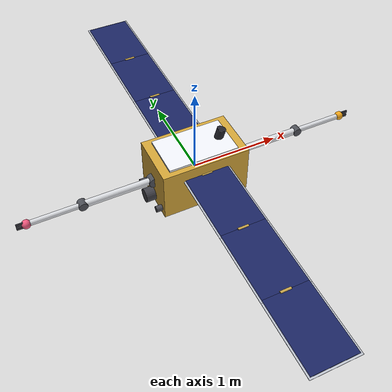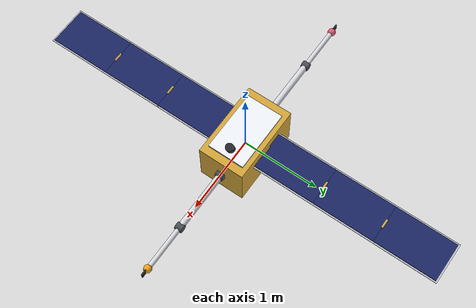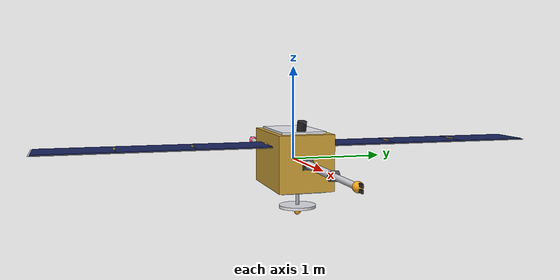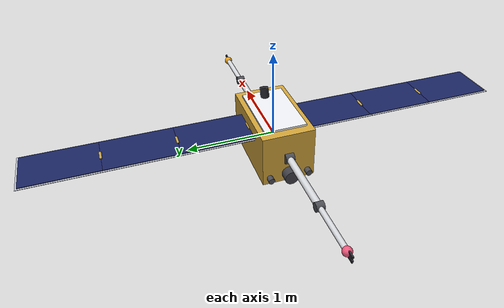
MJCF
<mujoco model="spacecraft_bimanual_panels">
  <compiler angle="radian"/>
  <option timestep="0.01" gravity="0 0 0" integrator="implicitfast">
    <flag contact="disable"/>
  </option>

  <default>
    <joint damping="0.5" armature="0.01"/>
    <geom rgba="0.6 0.6 0.6 1"/>
    <default class="detail">
      <geom contype="0" conaffinity="0" mass="0.01"/>
    </default>
    <default class="panel_hinge">
      <joint type="hinge" axis="1 0 0" range="-0.05 3.2"
             stiffness="2.0" damping="0.3" springref="0"/>
    </default>
    <default class="panel_cell">
      <geom type="box" size="0.25 0.4 0.005" mass="2"
            contype="0" conaffinity="0" rgba="0.10 0.14 0.38 1"/>
    </default>
    <default class="panel_frame">
      <geom type="box" size="0.27 0.42 0.002" mass="0.01"
            contype="0" conaffinity="0" rgba="0.74 0.76 0.80 1"/>
    </default>
  </default>

  <worldbody>
    <body name="bus" pos="0 0 0">
      <freejoint name="base"/>
      <!-- Gold MLI-wrapped bus -->
      <geom name="bus" type="box" size="0.5 0.3 0.3" mass="300"
            rgba="0.82 0.64 0.22 1"/>
      <!-- White radiator panels on the +/-Z faces -->
      <geom name="radiator_top" class="detail" type="box" size="0.40 0.24 0.012"
            pos="0 0 0.312" rgba="0.93 0.94 0.96 1"/>
      <geom name="radiator_bot" class="detail" type="box" size="0.40 0.24 0.012"
            pos="0 0 -0.312" rgba="0.93 0.94 0.96 1"/>
      <!-- Star tracker -->
      <geom name="star_tracker" class="detail" type="cylinder" size="0.05 0.07"
            pos="0.30 0 0.36" zaxis="0.3 0 1" rgba="0.15 0.15 0.18 1"/>
      <!-- Nadir-pointing high-gain antenna dish on the -Z face -->
      <geom name="antenna_boom" class="detail" type="cylinder" size="0.02 0.09"
            pos="0.15 0 -0.40" zaxis="0 0 1" rgba="0.65 0.67 0.70 1"/>
      <geom name="antenna_dish" class="detail" type="cylinder" size="0.20 0.015"
            pos="0.15 0 -0.50" zaxis="0 0 1" rgba="0.88 0.89 0.92 1"/>
      <geom name="antenna_feed" class="detail" type="sphere" size="0.035"
            pos="0.15 0 -0.56" rgba="0.95 0.62 0.15 1"/>
      <!-- Main engine + RCS thruster nozzles on the -X face, clear of arm B -->
      <geom name="nozzle_main" class="detail" type="cylinder" size="0.08 0.06"
            pos="-0.55 0 -0.20" zaxis="1 0 0" rgba="0.25 0.25 0.28 1"/>
      <geom name="nozzle_rcs_p" class="detail" type="cylinder" size="0.035 0.04"
            pos="-0.53 0.22 -0.22" zaxis="1 0 0" rgba="0.30 0.30 0.33 1"/>
      <geom name="nozzle_rcs_n" class="detail" type="cylinder" size="0.035 0.04"
            pos="-0.53 -0.22 -0.22" zaxis="1 0 0" rgba="0.30 0.30 0.33 1"/>

      <!-- ============ Arm A (+X face) ============ -->
      <body name="link1_a" pos="0.5 0 0">
        <joint name="shoulder_a" type="hinge" axis="0 1 0" range="-3.14 3.14"/>
        <geom name="shoulder_housing_a" class="detail" type="cylinder"
              size="0.06 0.05" zaxis="0 1 0" rgba="0.30 0.31 0.34 1"/>
        <geom name="upper_a" type="capsule" fromto="0 0 0 0.8 0 0" size="0.04"
              mass="5" rgba="0.85 0.86 0.88 1"/>
        <body name="link2_a" pos="0.8 0 0">
          <joint name="elbow_a" type="hinge" axis="0 1 0" range="-3.14 3.14"/>
          <geom name="elbow_housing_a" class="detail" type="cylinder"
                size="0.05 0.045" zaxis="0 1 0" rgba="0.30 0.31 0.34 1"/>
          <geom name="fore_a" type="capsule" fromto="0 0 0 0.6 0 0" size="0.03"
                mass="3" rgba="0.85 0.86 0.88 1"/>
          <body name="ee_a" pos="0.6 0 0">
            <geom name="wrist_a" type="sphere" size="0.05" mass="1"
                  rgba="0.95 0.65 0.10 1"/>
            <geom name="finger_a_a" class="detail" type="box"
                  size="0.045 0.008 0.015" pos="0.06 0 0.025"
                  rgba="0.20 0.20 0.23 1"/>
            <geom name="finger_a_b" class="detail" type="box"
                  size="0.045 0.008 0.015" pos="0.06 0 -0.025"
                  rgba="0.20 0.20 0.23 1"/>
          </body>
        </body>
      </body>

      <!-- ============ Arm B (-X face, mirrored) ============ -->
      <body name="link1_b" pos="-0.5 0 0">
        <joint name="shoulder_b" type="hinge" axis="0 1 0" range="-3.14 3.14"/>
        <geom name="shoulder_housing_b" class="detail" type="cylinder"
              size="0.06 0.05" zaxis="0 1 0" rgba="0.30 0.31 0.34 1"/>
        <geom name="upper_b" type="capsule" fromto="0 0 0 -0.8 0 0" size="0.04"
              mass="5" rgba="0.85 0.86 0.88 1"/>
        <body name="link2_b" pos="-0.8 0 0">
          <joint name="elbow_b" type="hinge" axis="0 1 0" range="-3.14 3.14"/>
          <geom name="elbow_housing_b" class="detail" type="cylinder"
                size="0.05 0.045" zaxis="0 1 0" rgba="0.30 0.31 0.34 1"/>
          <geom name="fore_b" type="capsule" fromto="0 0 0 -0.6 0 0" size="0.03"
                mass="3" rgba="0.85 0.86 0.88 1"/>
          <body name="ee_b" pos="-0.6 0 0">
            <geom name="wrist_b" type="sphere" size="0.05" mass="1"
                  rgba="0.95 0.35 0.50 1"/>
            <geom name="finger_b_a" class="detail" type="box"
                  size="0.045 0.008 0.015" pos="-0.06 0 0.025"
                  rgba="0.20 0.20 0.23 1"/>
            <geom name="finger_b_b" class="detail" type="box"
                  size="0.045 0.008 0.015" pos="-0.06 0 -0.025"
                  rgba="0.20 0.20 0.23 1"/>
          </body>
        </body>
      </body>

      <!-- ============ +Y solar wing: 3 framed panels ============ -->
      <body name="wp_0" pos="0 0.3 0.16">
        <joint name="hp_0" class="panel_hinge"/>
        <geom name="hinge_p_0" class="detail" type="cylinder" size="0.015 0.06"
              zaxis="1 0 0" rgba="0.80 0.66 0.30 1"/>
        <geom name="panel_p_0" pos="0 0.4 0" class="panel_cell"/>
        <geom name="frame_p_0" pos="0 0.4 -0.006" class="panel_frame"/>
        <body name="wp_1" pos="0 0.8 0">
          <joint name="hp_1" class="panel_hinge"/>
          <geom name="hinge_p_1" class="detail" type="cylinder" size="0.015 0.06"
                zaxis="1 0 0" rgba="0.80 0.66 0.30 1"/>
          <geom name="panel_p_1" pos="0 0.4 0" class="panel_cell"/>
          <geom name="frame_p_1" pos="0 0.4 -0.006" class="panel_frame"/>
          <body name="wp_2" pos="0 0.8 0">
            <joint name="hp_2" class="panel_hinge"/>
            <geom name="hinge_p_2" class="detail" type="cylinder" size="0.015 0.06"
                  zaxis="1 0 0" rgba="0.80 0.66 0.30 1"/>
            <geom name="panel_p_2" pos="0 0.4 0" class="panel_cell"/>
            <geom name="frame_p_2" pos="0 0.4 -0.006" class="panel_frame"/>
          </body>
        </body>
      </body>

      <!-- ============ -Y solar wing: 3 framed panels (mirrored) ============ -->
      <body name="wn_0" pos="0 -0.3 0.16">
        <joint name="hn_0" class="panel_hinge"/>
        <geom name="hinge_n_0" class="detail" type="cylinder" size="0.015 0.06"
              zaxis="1 0 0" rgba="0.80 0.66 0.30 1"/>
        <geom name="panel_n_0" pos="0 -0.4 0" class="panel_cell"/>
        <geom name="frame_n_0" pos="0 -0.4 -0.006" class="panel_frame"/>
        <body name="wn_1" pos="0 -0.8 0">
          <joint name="hn_1" class="panel_hinge"/>
          <geom name="hinge_n_1" class="detail" type="cylinder" size="0.015 0.06"
                zaxis="1 0 0" rgba="0.80 0.66 0.30 1"/>
          <geom name="panel_n_1" pos="0 -0.4 0" class="panel_cell"/>
          <geom name="frame_n_1" pos="0 -0.4 -0.006" class="panel_frame"/>
          <body name="wn_2" pos="0 -0.8 0">
            <joint name="hn_2" class="panel_hinge"/>
            <geom name="hinge_n_2" class="detail" type="cylinder" size="0.015 0.06"
                  zaxis="1 0 0" rgba="0.80 0.66 0.30 1"/>
            <geom name="panel_n_2" pos="0 -0.4 0" class="panel_cell"/>
            <geom name="frame_n_2" pos="0 -0.4 -0.006" class="panel_frame"/>
          </body>
        </body>
      </body>
    </body>
  </worldbody>

  <actuator>
    <!-- kv near critical damping (zeta ~ 0.4-0.6 at the loaded arm inertia)
         so slews track smoothly without ringing. -->
    <position name="shoulder_a_pos" joint="shoulder_a" kp="80" kv="14"
              ctrlrange="-3.14 3.14"/>
    <position name="elbow_a_pos" joint="elbow_a" kp="60" kv="10"
              ctrlrange="-3.14 3.14"/>
    <position name="shoulder_b_pos" joint="shoulder_b" kp="80" kv="14"
              ctrlrange="-3.14 3.14"/>
    <position name="elbow_b_pos" joint="elbow_b" kp="60" kv="10"
              ctrlrange="-3.14 3.14"/>
  </actuator>

  <mjorbit use_j2="false" use_drag="false" use_srp="false" use_magnetic="false"
           use_gravity_gradient="true">
  </mjorbit>
</mujoco>
